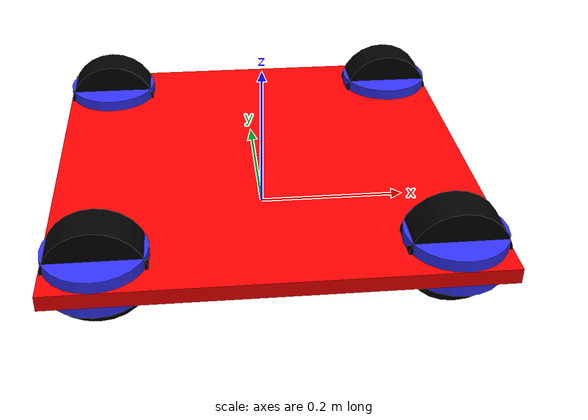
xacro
<?xml version="1.0"?>
<robot xmlns:xacro="http://www.ros.org/wiki/xacro">

    <xacro:include filename="inertia_macros.xacro" />

    <!-- COLOR -->

    <material name="white">
        <color rgba="1 1 1 1" />
    </material>

    <material name="orange">
        <color rgba="1 0.3 0.1 1" />
    </material>

    <material name="blue">
        <color rgba="0.2 0.2 1 1" />
    </material>

    <material name="black">
        <color rgba="0 0 0 1" />
    </material>

    <material name="red">
        <color rgba="1.0 0.0 0.0 1" />
    </material>

    <!-- Base Link -->

    <link name="base_link"></link>

    <!-- Chassis link -->

    <joint name="chassis_joint" type="fixed">
        <origin xyz="0.0 0.0 0.063" rpy="0.0 0.0 0.0" />
        <parent link="base_link" />
        <child link="chassis_link" />
    </joint>

    <link name="chassis_link">

        <visual>
            <geometry>
                <box size="0.55 0.55 0.02" />
            </geometry>
            <material name="red" />
        </visual>

        <collision>
            <geometry>
                <box size="0.55 0.55 0.02" />
            </geometry>
        </collision>

        <xacro:inertial_box mass="0.5" x="0.36" y="0.36" z="0.02">
            <origin xyz="0.0 0.0 0.0" />
        </xacro:inertial_box>

    </link>

    <gazebo reference="chassis_link">
        <material>Gazebo/Red</material>
    </gazebo>

    <!-- Wheel front left -->

    <joint name="swerve_fl_joint" type="revolute">
        <origin xyz="-0.212 0.212 0.063" rpy="0.0 0.0 0.0" />
        <parent link="base_link" />
        <child link="swerve_fl_link" />
        <axis xyz="0.0 0.0 1.0" />
        <limit lower="${-pi}" upper="${pi}" effort="100.0" velocity="50.0" />
    </joint>

    <link name="swerve_fl_link">

        <visual>
            <origin xyz="0.0 0.0 0.0" rpy="0.0 0.0 ${pi/2}" />
            <geometry>
                <cylinder radius="0.063" length="0.05" />
            </geometry>
            <material name="blue" />
        </visual>

        <collision>
            <origin xyz="0.0 0.0 0.0" rpy="0.0 0.0 ${pi/2}" />
            <geometry>
                <cylinder radius="0.063" length="0.05" />
            </geometry>
        </collision>

        <xacro:inertial_cylinder mass="0.1" length="0.05" radius="0.063">
            <origin xyz="0.0 0.0 0.0" rpy="0.0 0.0 0.0" />
        </xacro:inertial_cylinder>

    </link>

    <gazebo reference="swerve_fl_link">
        <material>Gazebo/Blue</material>
    </gazebo>

    <joint name="wheel_fl_joint" type="continuous">
        <origin xyz="0.0 0.0 0.0" rpy="0.0 ${-pi/2} ${-pi/2}" />
        <parent link="swerve_fl_link" />
        <child link="wheel_fl_link" />
        <axis xyz="0.0 0.0 1.0" />
    </joint>

    <link name="wheel_fl_link">

        <visual>
            <geometry>
                <cylinder radius="0.063" length="0.05" />
            </geometry>
            <material name="black" />
        </visual>

        <collision>
            <geometry>
                <cylinder radius="0.063" length="0.05" />
            </geometry>
        </collision>

        <xacro:inertial_cylinder mass="0.1" length="0.05" radius="0.063">
            <origin xyz="0.0 0.0 0.0" rpy="0.0 0.0 0.0" />
        </xacro:inertial_cylinder>

    </link>

    <gazebo reference="wheel_fl_link">
        <material>Gazebo/Black</material>
    </gazebo>

    <!-- Wheel front right -->

    <joint name="swerve_fr_joint" type="revolute">
        <origin xyz="0.212 0.212 0.063" rpy="0.0 0.0 0.0" />
        <parent link="base_link" />
        <child link="swerve_fr_link" />
        <axis xyz="0.0 0.0 1.0" />
        <limit lower="${-pi}" upper="${pi}" effort="100.0" velocity="50.0" />
    </joint>

    <link name="swerve_fr_link">

        <visual>
            <origin xyz="0.0 0.0 0.0" rpy="0.0 0.0 ${pi/2}" />
            <geometry>
                <cylinder radius="0.063" length="0.05" />
            </geometry>
            <material name="blue" />
        </visual>

        <collision>
            <origin xyz="0.0 0.0 0.0" rpy="0.0 0.0 ${pi/2}" />
            <geometry>
                <cylinder radius="0.063" length="0.05" />
            </geometry>
        </collision>

        <xacro:inertial_cylinder mass="0.1" length="0.05" radius="0.063">
            <origin xyz="0.0 0.0 0.0" rpy="0.0 0.0 0.0" />
        </xacro:inertial_cylinder>

    </link>

    <gazebo reference="swerve_fr_link">
        <material>Gazebo/Blue</material>
    </gazebo>

    <joint name="wheel_fr_joint" type="continuous">
        <origin xyz="0.0 0.0 0.0" rpy="0.0 ${-pi/2} ${-pi/2}" />
        <parent link="swerve_fr_link" />
        <child link="wheel_fr_link" />
        <axis xyz="0.0 0.0 1.0" />
    </joint>

    <link name="wheel_fr_link">

        <visual>
            <geometry>
                <cylinder radius="0.063" length="0.05" />
            </geometry>
            <material name="black" />
        </visual>

        <collision>
            <geometry>
                <cylinder radius="0.063" length="0.05" />
            </geometry>
        </collision>

        <xacro:inertial_cylinder mass="0.1" length="0.05" radius="0.063">
            <origin xyz="0.0 0.0 0.0" rpy="0.0 0.0 0.0" />
        </xacro:inertial_cylinder>

    </link>

    <gazebo reference="wheel_fr_link">
        <material>Gazebo/Black</material>
    </gazebo>

    <!-- Wheel rear left -->

    <joint name="swerve_rl_joint" type="revolute">
        <origin xyz="-0.212 -0.212 0.063" rpy="0.0 0.0 0.0" />
        <parent link="base_link" />
        <child link="swerve_rl_link" />
        <axis xyz="0.0 0.0 1.0" />
        <limit lower="${-pi}" upper="${pi}" effort="100.0" velocity="50.0" />
    </joint>

    <link name="swerve_rl_link">

        <visual>
            <origin xyz="0.0 0.0 0.0" rpy="0.0 0.0 ${pi/2}" />
            <geometry>
                <cylinder radius="0.063" length="0.05" />
            </geometry>
            <material name="blue" />
        </visual>

        <collision>
            <origin xyz="0.0 0.0 0.0" rpy="0.0 0.0 ${pi/2}" />
            <geometry>
                <cylinder radius="0.063" length="0.05" />
            </geometry>
        </collision>

        <xacro:inertial_cylinder mass="0.1" length="0.05" radius="0.063">
            <origin xyz="0.0 0.0 0.0" rpy="0.0 0.0 0.0" />
        </xacro:inertial_cylinder>

    </link>

    <gazebo reference="swerve_rl_link">
        <material>Gazebo/Blue</material>
    </gazebo>

    <joint name="wheel_rl_joint" type="continuous">
        <origin xyz="0.0 0.0 0.0" rpy="0.0 ${-pi/2} ${-pi/2}" />
        <parent link="swerve_rl_link" />
        <child link="wheel_rl_link" />
        <axis xyz="0.0 0.0 1.0" />
    </joint>

    <link name="wheel_rl_link">

        <visual>
            <geometry>
                <cylinder radius="0.063" length="0.05" />
            </geometry>
            <material name="black" />
        </visual>

        <collision>
            <geometry>
                <cylinder radius="0.063" length="0.05" />
            </geometry>
        </collision>

        <xacro:inertial_cylinder mass="0.1" length="0.05" radius="0.063">
            <origin xyz="0.0 0.0 0.0" rpy="0.0 0.0 0.0" />
        </xacro:inertial_cylinder>

    </link>

    <gazebo reference="wheel_rl_link">
        <material>Gazebo/Black</material>
    </gazebo>

    <!-- Wheel rear right -->

    <joint name="swerve_rr_joint" type="revolute">
        <origin xyz="0.212 -0.212 0.063" rpy="0.0 0.0 0.0" />
        <parent link="base_link" />
        <child link="swerve_rr_link" />
        <axis xyz="0.0 0.0 1.0" />
        <limit lower="${-pi}" upper="${pi}" effort="100.0" velocity="50.0" />
    </joint>

    <link name="swerve_rr_link">

        <visual>
            <origin xyz="0.0 0.0 0.0" rpy="0.0 0.0 ${pi/2}" />
            <geometry>
                <cylinder radius="0.063" length="0.05" />
            </geometry>
            <material name="blue" />
        </visual>

        <collision>
            <origin xyz="0.0 0.0 0.0" rpy="0.0 0.0 ${pi/2}" />
            <geometry>
                <cylinder radius="0.063" length="0.05" />
            </geometry>
        </collision>

        <xacro:inertial_cylinder mass="0.1" length="0.05" radius="0.063">
            <origin xyz="0.0 0.0 0.0" rpy="0.0 0.0 0.0" />
        </xacro:inertial_cylinder>

    </link>

    <gazebo reference="swerve_rr_link">
        <material>Gazebo/Blue</material>
    </gazebo>

    <joint name="wheel_rr_joint" type="continuous">
        <origin xyz="0.0 0.0 0.0" rpy="0.0 ${-pi/2} ${-pi/2}" />
        <parent link="swerve_rr_link" />
        <child link="wheel_rr_link" />
        <axis xyz="0.0 0.0 1.0" />
    </joint>

    <link name="wheel_rr_link">

        <visual>
            <geometry>
                <cylinder radius="0.063" length="0.05" />
            </geometry>
            <material name="black" />
        </visual>

        <collision>
            <geometry>
                <cylinder radius="0.063" length="0.05" />
            </geometry>
        </collision>

        <xacro:inertial_cylinder mass="0.1" length="0.05" radius="0.063">
            <origin xyz="0.0 0.0 0.0" rpy="0.0 0.0 0.0" />
        </xacro:inertial_cylinder>

    </link>

    <gazebo reference="wheel_rr_link">
        <material>Gazebo/Black</material>
    </gazebo>

</robot>
